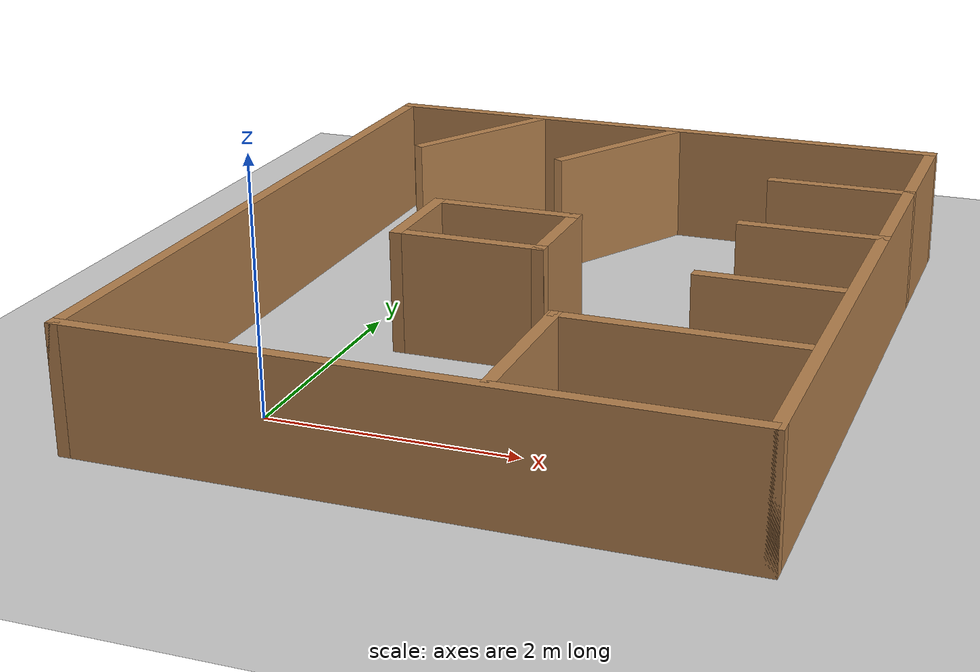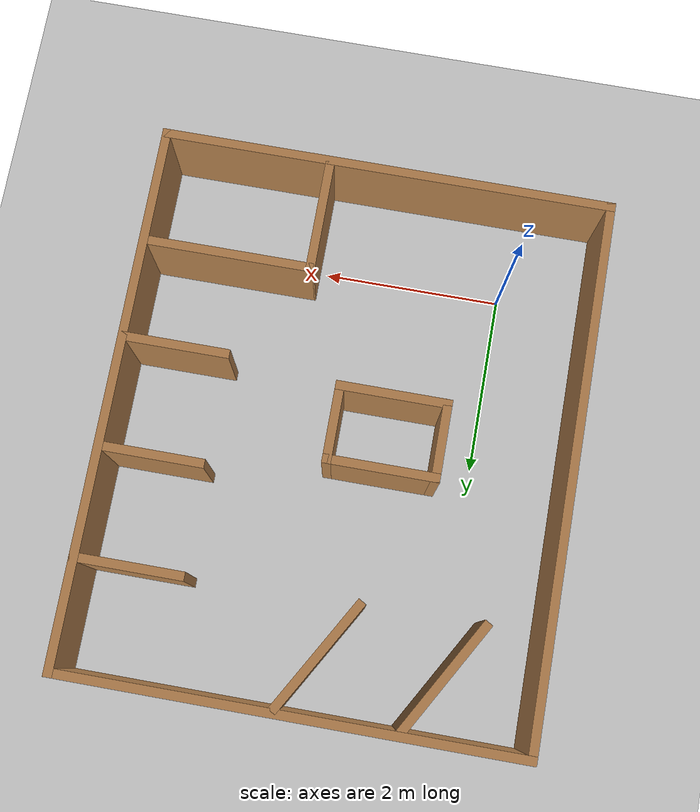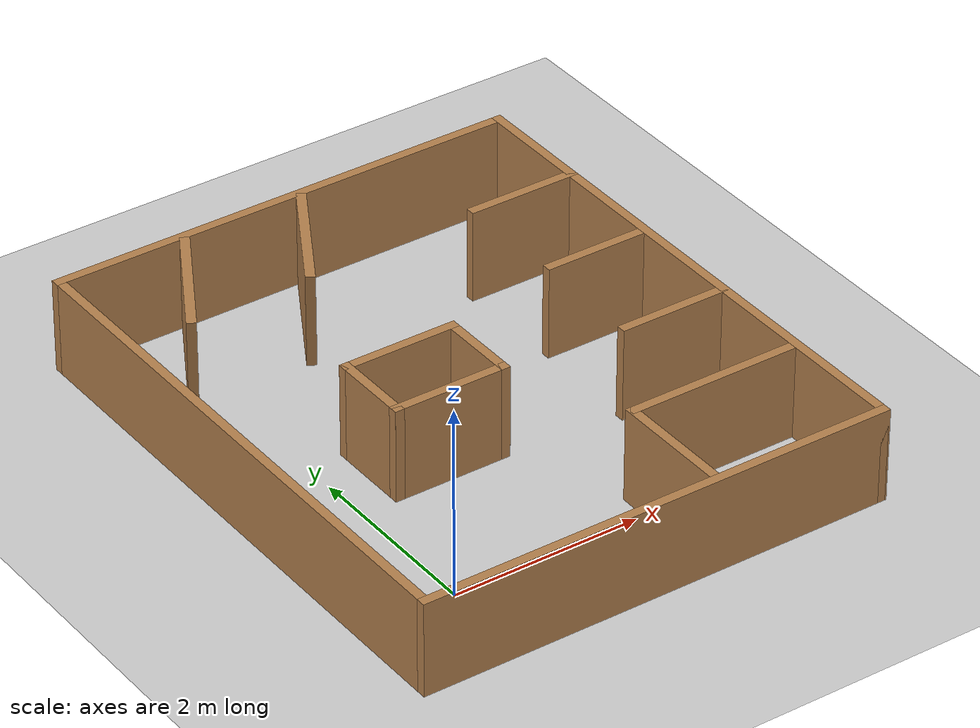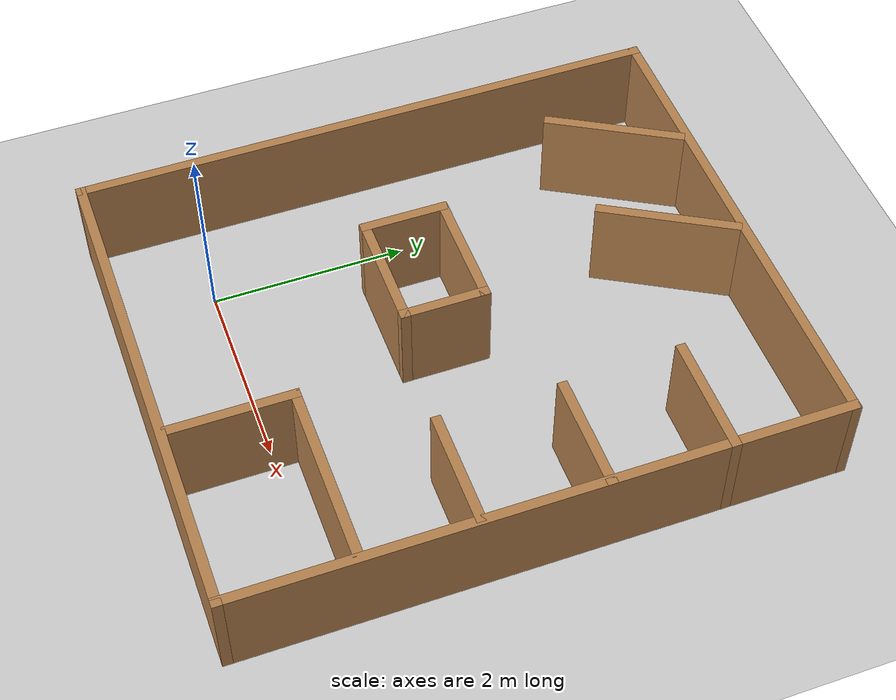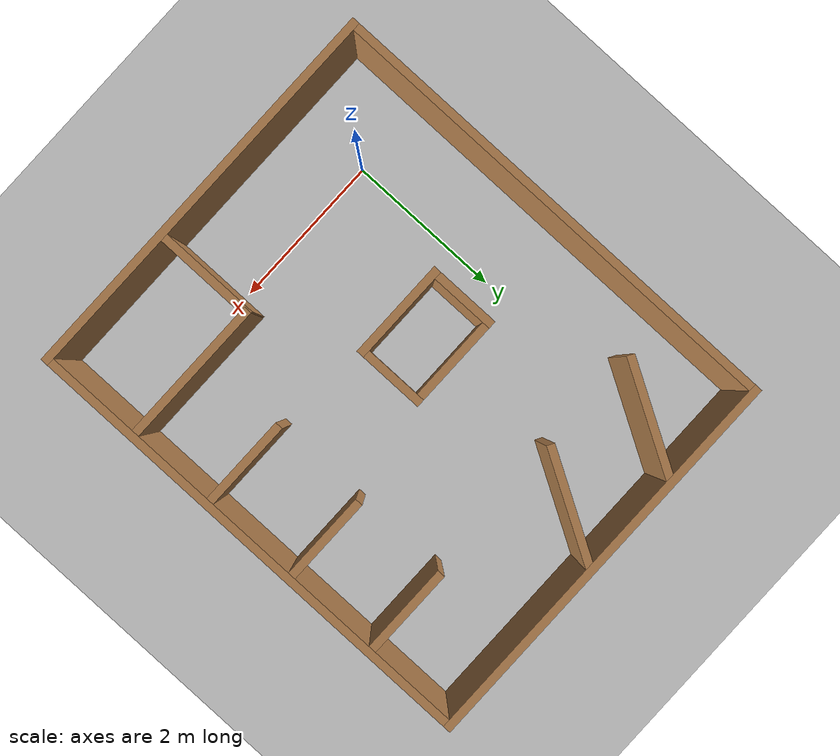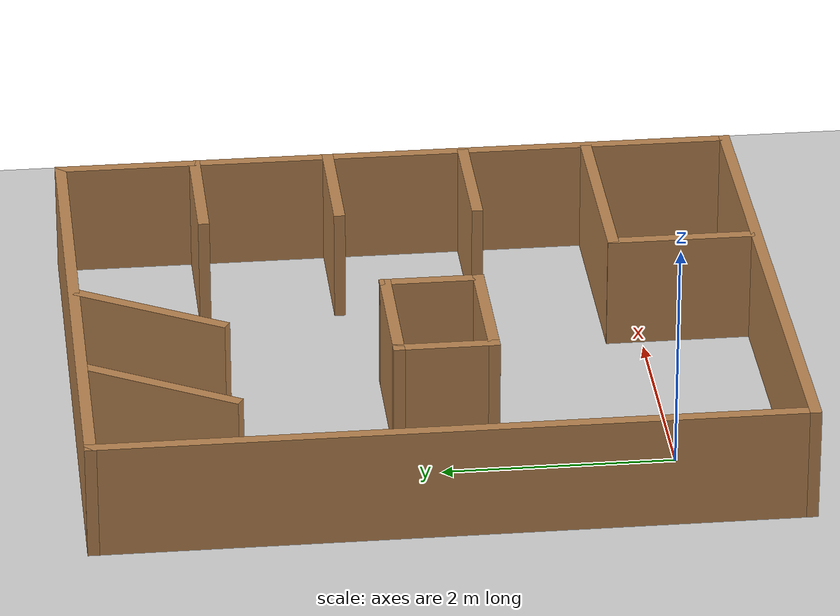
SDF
<sdf version="1.7">
 <world name="default">
  <light name="sun" type="directional">
   <pose>0 0 10 0 -0 0</pose>
   <diffuse>0.8 0.8 0.8 1</diffuse>
   <specular>0.2 0.2 0.2 1</specular>
   <attenuation>
    <range>1000</range>
    <constant>0.9</constant>
    <linear>0.01</linear>
    <quadratic>0.001</quadratic>
   </attenuation>
   <direction>-0.5 0.1 -0.9</direction>
   <spot><inner_angle>0</inner_angle><outer_angle>0</outer_angle><falloff>0</falloff></spot>
  </light>
  <model name="ground_plane">
   <static>1</static>
   <link name="link">
    <collision name="collision">
     <geometry><plane><normal>0 0 1</normal><size>100 100</size></plane></geometry>
     <surface>
      <contact><collide_bitmask>65535</collide_bitmask></contact>
      <friction><ode><mu>100</mu><mu2>50</mu2></ode></friction>
     </surface>
    </collision>
    <visual name="visual">
     <cast_shadows>0</cast_shadows>
     <geometry><plane><normal>0 0 1</normal><size>100 100</size></plane></geometry>
     <material>
      <script><uri>file://media/materials/scripts/gazebo.material</uri><name>Gazebo/Grey</name></script>
     </material>
    </visual>
   </link>
  </model>
  <gravity>0 0 -9.8</gravity>
  <magnetic_field>6e-06 2.3e-05 -4.2e-05</magnetic_field>
  <atmosphere type="adiabatic"/>
  <physics type="ode">
   <max_step_size>0.001</max_step_size>
   <real_time_factor>1</real_time_factor>
   <real_time_update_rate>1000</real_time_update_rate>
  </physics>
  <scene><ambient>0.4 0.4 0.4 1</ambient><background>0.7 0.7 0.7 1</background><shadows>1</shadows></scene>
  <spherical_coordinates>
   <surface_model>EARTH_WGS84</surface_model>
   <latitude_deg>0</latitude_deg>
   <longitude_deg>0</longitude_deg>
   <elevation>0</elevation>
   <heading_deg>0</heading_deg>
  </spherical_coordinates>
  <model name="parking_simple">
   <pose>1.50009 2 0 0 -0 0</pose>
   <link name="Wall_26">
    <collision name="Wall_26_Collision">
     <geometry><box><size>5.10003 0.1 1</size></box></geometry>
     <pose>0 0 0.5 0 -0 0</pose>
    </collision>
    <visual name="Wall_26_Visual">
     <pose>0 0 0.5 0 -0 0</pose>
     <geometry><box><size>5.10003 0.1 1</size></box></geometry>
     <material>
      <script><uri>file://media/materials/scripts/gazebo.material</uri><name>Gazebo/Wood</name></script>
      <ambient>1 1 1 1</ambient>
     </material>
     <meta><layer>0</layer></meta>
    </visual>
    <pose>-9.1e-05 3 0 0 -0 0</pose>
   </link>
   <link name="Wall_28">
    <collision name="Wall_28_Collision">
     <geometry><box><size>5.10003 0.1 1</size></box></geometry>
     <pose>0 0 0.5 0 -0 0</pose>
    </collision>
    <visual name="Wall_28_Visual">
     <pose>0 0 0.5 0 -0 0</pose>
     <geometry><box><size>5.10003 0.1 1</size></box></geometry>
     <material>
      <script><uri>file://media/materials/scripts/gazebo.material</uri><name>Gazebo/Wood</name></script>
      <ambient>1 1 1 1</ambient>
     </material>
     <meta><layer>0</layer></meta>
    </visual>
    <pose>-9.1e-05 -3 0 0 -0 0</pose>
   </link>
   <link name="Wall_30">
    <collision name="Wall_30_Collision">
     <geometry><box><size>6.1 0.1 1</size></box></geometry>
     <pose>0 0 0.5 0 -0 0</pose>
    </collision>
    <visual name="Wall_30_Visual">
     <pose>0 0 0.5 0 -0 0</pose>
     <geometry><box><size>6.1 0.1 1</size></box></geometry>
     <material>
      <script><uri>file://media/materials/scripts/gazebo.material</uri><name>Gazebo/Wood</name></script>
      <ambient>1 1 1 1</ambient>
     </material>
     <meta><layer>0</layer></meta>
    </visual>
    <pose>-2.50009 0 0 0 -0 -1.5708</pose>
   </link>
   <link name="Wall_32">
    <collision name="Wall_32_Collision">
     <geometry><box><size>6.1 0.1 1</size></box></geometry>
     <pose>0 0 0.5 0 -0 0</pose>
    </collision>
    <visual name="Wall_32_Visual">
     <pose>0 0 0.5 0 -0 0</pose>
     <geometry><box><size>6.1 0.1 1</size></box></geometry>
     <material>
      <script><uri>file://media/materials/scripts/gazebo.material</uri><name>Gazebo/Wood</name></script>
      <ambient>1 1 1 1</ambient>
     </material>
     <meta><layer>0</layer></meta>
    </visual>
    <pose>2.49991 0 0 0 -0 -1.5708</pose>
   </link>
   <link name="Wall_34">
    <collision name="Wall_34_Collision">
     <geometry><box><size>1.23039 0.1 1</size></box></geometry>
     <pose>0 0 0.5 0 -0 0</pose>
    </collision>
    <visual name="Wall_34_Visual">
     <pose>0 0 0.5 0 -0 0</pose>
     <geometry><box><size>1.23039 0.1 1</size></box></geometry>
     <material>
      <script><uri>file://media/materials/scripts/gazebo.material</uri><name>Gazebo/Wood</name></script>
      <ambient>1 1 1 1</ambient>
     </material>
     <meta><layer>0</layer></meta>
    </visual>
    <pose>1.93491 1.8 0 0 -0 3.14159</pose>
   </link>
   <link name="Wall_36">
    <collision name="Wall_36_Collision">
     <geometry><box><size>1.2 0.1 1</size></box></geometry>
     <pose>0 0 0.5 0 -0 0</pose>
    </collision>
    <visual name="Wall_36_Visual">
     <pose>0 0 0.5 0 -0 0</pose>
     <geometry><box><size>1.2 0.1 1</size></box></geometry>
     <material>
      <script><uri>file://media/materials/scripts/gazebo.material</uri><name>Gazebo/Wood</name></script>
      <ambient>1 1 1 1</ambient>
     </material>
     <meta><layer>0</layer></meta>
    </visual>
    <pose>1.94991 0.6 0 0 -0 3.14159</pose>
   </link>
   <link name="Wall_38">
    <collision name="Wall_38_Collision">
     <geometry><box><size>1.44946 0.1 1</size></box></geometry>
     <pose>0 0 0.5 0 -0 0</pose>
    </collision>
    <visual name="Wall_38_Visual">
     <pose>0 0 0.5 0 -0 0</pose>
     <geometry><box><size>1.44946 0.1 1</size></box></geometry>
     <material>
      <script><uri>file://media/materials/scripts/gazebo.material</uri><name>Gazebo/Wood</name></script>
      <ambient>1 1 1 1</ambient>
     </material>
     <meta><layer>0</layer></meta>
    </visual>
    <pose>-0.180591 2.3565 0 0 -0 1.04715</pose>
   </link>
   <link name="Wall_40">
    <collision name="Wall_40_Collision">
     <geometry><box><size>1.44959 0.1 1</size></box></geometry>
     <pose>0 0 0.5 0 -0 0</pose>
    </collision>
    <visual name="Wall_40_Visual">
     <pose>0 0 0.5 0 -0 0</pose>
     <geometry><box><size>1.44959 0.1 1</size></box></geometry>
     <material>
      <script><uri>file://media/materials/scripts/gazebo.material</uri><name>Gazebo/Wood</name></script>
      <ambient>1 1 1 1</ambient>
     </material>
     <meta><layer>0</layer></meta>
    </visual>
    <pose>-1.50259 2.3425 0 0 -0 -2.09444</pose>
   </link>
   <link name="Wall_51">
    <collision name="Wall_51_Collision">
     <geometry><box><size>1.87609 0.1 1</size></box></geometry>
     <pose>0 0 0.5 0 -0 0</pose>
    </collision>
    <visual name="Wall_51_Visual">
     <pose>0 0 0.5 0 -0 0</pose>
     <geometry><box><size>1.87609 0.1 1</size></box></geometry>
     <material>
      <script><uri>file://media/materials/scripts/gazebo.material</uri><name>Gazebo/Wood</name></script>
      <ambient>1 1 1 1</ambient>
     </material>
     <meta><layer>0</layer></meta>
    </visual>
    <pose>1.54687 -1.733 0 0 -0 3.14159</pose>
   </link>
   <link name="Wall_52">
    <collision name="Wall_52_Collision">
     <geometry><box><size>1.3 0.1 1</size></box></geometry>
     <pose>0 0 0.5 0 -0 0</pose>
    </collision>
    <visual name="Wall_52_Visual">
     <pose>0 0 0.5 0 -0 0</pose>
     <geometry><box><size>1.3 0.1 1</size></box></geometry>
     <material>
      <script><uri>file://media/materials/scripts/gazebo.material</uri><name>Gazebo/Wood</name></script>
      <ambient>1 1 1 1</ambient>
     </material>
     <meta><layer>0</layer></meta>
    </visual>
    <pose>0.641431 -2.333 0 0 -0 -1.5708</pose>
   </link>
   <link name="Wall_54">
    <collision name="Wall_54_Collision">
     <geometry><box><size>1.20007 0.1 1</size></box></geometry>
     <pose>0 0 0.5 0 -0 0</pose>
    </collision>
    <visual name="Wall_54_Visual">
     <pose>0 0 0.5 0 -0 0</pose>
     <geometry><box><size>1.20007 0.1 1</size></box></geometry>
     <material>
      <script><uri>file://media/materials/scripts/gazebo.material</uri><name>Gazebo/Wood</name></script>
      <ambient>1 1 1 1</ambient>
     </material>
     <meta><layer>0</layer></meta>
    </visual>
    <pose>1.91991 -0.62 0 0 -0 3.14159</pose>
   </link>
   <static>1</static>
  </model>
  <model name="model2">
   <pose>0.819613 1.18509 0 0 -0 0</pose>
   <link name="Wall_1">
    <collision name="Wall_1_Collision">
     <geometry><box><size>1.26945 0.1 1</size></box></geometry>
     <pose>0 0 0.5 0 -0 0</pose>
    </collision>
    <visual name="Wall_1_Visual">
     <pose>0 0 0.5 0 -0 0</pose>
     <geometry><box><size>1.26945 0.1 1</size></box></geometry>
     <material>
      <script><uri>file://media/materials/scripts/gazebo.material</uri><name>Gazebo/Wood</name></script>
      <ambient>1 1 1 1</ambient>
     </material>
     <meta><layer>0</layer></meta>
    </visual>
    <pose>0.184887 0.324909 0 0 -0 3.14159</pose>
   </link>
   <link name="Wall_18">
    <collision name="Wall_18_Collision">
     <geometry><box><size>0.910364 0.1 1</size></box></geometry>
     <pose>0 0 0.5 0 -0 0</pose>
    </collision>
    <visual name="Wall_18_Visual">
     <pose>0 0 0.5 0 -0 0</pose>
     <geometry><box><size>0.910364 0.1 1</size></box></geometry>
     <material>
      <script><uri>file://media/materials/scripts/gazebo.material</uri><name>Gazebo/Wood</name></script>
      <ambient>1 1 1 1</ambient>
     </material>
     <meta><layer>0</layer></meta>
    </visual>
    <pose>-0.399613 0.729909 0 0 -0 -1.5708</pose>
   </link>
   <link name="Wall_20">
    <collision name="Wall_20_Collision">
     <geometry><box><size>0.910364 0.1 1</size></box></geometry>
     <pose>0 0 0.5 0 -0 0</pose>
    </collision>
    <visual name="Wall_20_Visual">
     <pose>0 0 0.5 0 -0 0</pose>
     <geometry><box><size>0.910364 0.1 1</size></box></geometry>
     <material>
      <script><uri>file://media/materials/scripts/gazebo.material</uri><name>Gazebo/Wood</name></script>
      <ambient>1 1 1 1</ambient>
     </material>
     <meta><layer>0</layer></meta>
    </visual>
    <pose>0.769387 0.729909 0 0 -0 -1.5708</pose>
   </link>
   <link name="Wall_8">
    <collision name="Wall_8_Collision">
     <geometry><box><size>1.269 0.1 1</size></box></geometry>
     <pose>0 0 0.5 0 -0 0</pose>
    </collision>
    <visual name="Wall_8_Visual">
     <pose>0 0 0.5 0 -0 0</pose>
     <geometry><box><size>1.269 0.1 1</size></box></geometry>
     <material>
      <script><uri>file://media/materials/scripts/gazebo.material</uri><name>Gazebo/Wood</name></script>
      <ambient>1 1 1 1</ambient>
     </material>
     <meta><layer>0</layer></meta>
    </visual>
    <pose>0.184887 1.13491 0 0 -0 0</pose>
   </link>
   <static>1</static>
  </model>
 </world>
</sdf>
